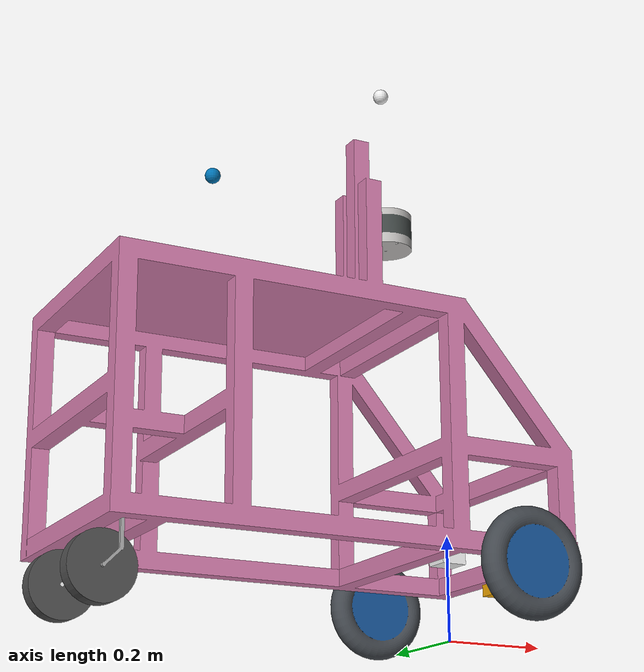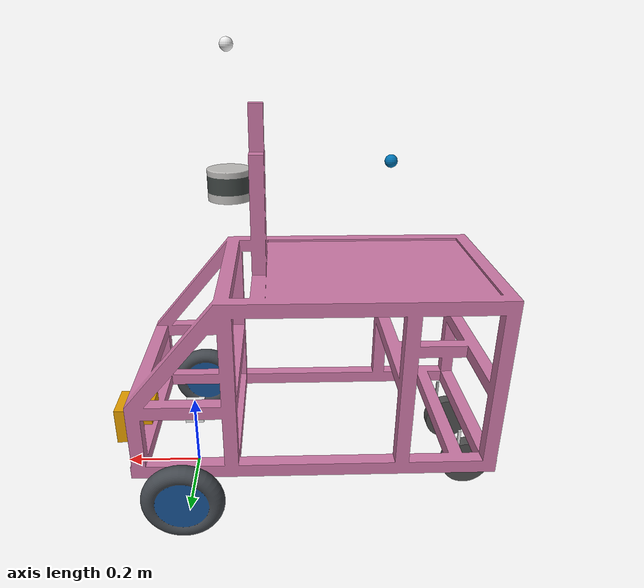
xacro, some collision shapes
<?xml version="1.0"?>
<!-- Revolute-Revolute Manipulator -->
<robot name="orange" xmlns:xacro="http://www.ros.org/wiki/xacro">

  <!-- Constants for robot dimensions -->
  <xacro:property name="PI" value="3.1415926535897931"/>

  <!-- Macro -->
  <xacro:macro name="box_inertia" params="m x y z">
    <inertia ixx="${m*(y*y+z*z)/12.0}" ixy = "0.0" ixz = "0.0"
             iyy="${m*(z*z+x*x)/12.0}" iyz = "0.0"
             izz="${m*(x*x+y*y)/12.0}" />
  </xacro:macro>
  <xacro:macro name="cylinder_inertia" params="m r h">
    <inertia ixx="${m*(3*r*r+h*h)/12.0}" ixy = "0.0" ixz = "0.0"
             iyy="${m*(3*r*r+h*h)/12.0}" iyz = "0.0"
             izz="${m*r*r/2.0}" />
  </xacro:macro>

  <!-- Import gazebo reference -->
  <xacro:include filename="$(find igvc2023)/urdf/orange.gazebo"/>

  <!-- Import 2D LiDAR model -->
  <xacro:include filename="$(find igvc2023)/urdf/sensors/hokuyo.urdf.xacro"/>
  <xacro:sensor_hokuyo name="hokuyo" parent="base_link" min_angle="-1.22" max_angle="1.22" samples="720">
    <origin xyz="0.16 0.0 0.05" rpy="0.0 0.0 0.0"/>
  </xacro:sensor_hokuyo>

  <!-- Import 3D LiDAR model -->
  <xacro:include filename="$(find igvc2023)/urdf/sensors/velodyne.urdf.xacro"/>
  <xacro:sensor_velodyne name="velodyne" parent="base_link" min_angle="-2.35619" max_angle="2.35619" samples="720">
    <origin xyz="-0.13 0.0 0.70" rpy="0.0 0.0 0.0"/>
  </xacro:sensor_velodyne>

  <!-- Import imu model -->
  <xacro:include filename="$(find igvc2023)/urdf/sensors/imu.urdf.xacro"/>
  <xacro:sensor_imu name="imu" parent="base_link" size="0.05 0.05 0.05">
    <origin xyz="0 0.0 0.068" rpy="0.0 0.0 0.0"/>
  </xacro:sensor_imu>

  <!-- Import fisheye camera model -->
  <xacro:include filename="$(find igvc2023)/urdf/sensors/camera.urdf.xacro"/>
  <xacro:sensor_camera name="camera" parent="base_link">
    <origin xyz="-0.13 0 1" rpy="0 0 0"/>
  </xacro:sensor_camera>

  <!-- Import gps model -->
  <xacro:include filename="$(find igvc2023)/urdf/sensors/gps.urdf.xacro"/>
  <xacro:sensor_gps name="gps" parent="base_link">
    <origin xyz="0.5 0 0.75" rpy="0 ${PI} 0"/>
  </xacro:sensor_gps>

  <!-- Base Footprint -->
  <joint name="base_joint" type="fixed">
    <parent link="base_footprint"/>
    <child link="base_link"/>
    <origin xyz="0.0 0.0 0.1015" rpy="0 0 0"/>
  </joint>

  <link name="base_footprint"/>

  <!-- Base Link -->
  <link name="base_link">
    <collision>
      <origin xyz="-0.33 0.0 0.25" rpy="0.0 0.0 0.0"/>
      <geometry>
        <box size="0.9 0.5 0.5"/>
      </geometry>
    </collision>

    <visual>
      <origin xyz="-0.355 0.0 0.3" rpy="0.0 0.0 0.0"/>
      <geometry>
        <mesh filename="package://igvc2023/meshes/IGVCchassis.dae"/>
      </geometry>
    </visual>

    <inertial>
       <mass value="40" />
       <origin xyz="-0.33 0.0 0.26" rpy="0.0 0.0 0.0"/>
       <xacro:box_inertia m="40" x="0.9" y="0.5" z="0.45"/>
    </inertial>
  </link>

  <!-- Back wheels -->
  <joint name="left_caster_hinge" type ="fixed">
    <origin xyz="0.0 0.0 0.0" rpy="0.0 0.0 0.0"/>
    <child link="left_caster_link"/>
    <parent link="base_link"/>
  </joint>

  <joint name="right_caster_hinge" type ="fixed">
    <origin xyz="0.0 0.0 0.0" rpy="0.0 0.0 0.0"/>
    <child link="right_caster_link"/>
    <parent link="base_link"/>
  </joint>

  <link name="left_caster_link">
    <collision>
      <origin xyz="-0.735 0.10 -0.039" rpy="0.0 ${PI/2} ${PI/2}"/>
      <geometry>
        <sphere radius="0.0625"/>
      </geometry>
    </collision>

    <visual>
      <origin xyz="-0.735 0.10 -0.039" rpy="0.0 0.0 0.0"/>
      <geometry>
        <mesh filename="package://igvc2023/meshes/left_back_wheel.dae"/>
      </geometry>
    </visual>
  </link>

  <link name="right_caster_link">
    <collision>
      <origin xyz="-0.735 -0.10 -0.039" rpy="0.0 ${PI/2} ${PI/2}"/>
      <geometry>
        <sphere radius="0.0625"/>
      </geometry>
    </collision>

    <visual>
      <origin xyz="-0.735 -0.10 -0.039" rpy="0.0 0.0 0.0"/>
      <geometry>
        <mesh filename="package://igvc2023/meshes/right_back_wheel.dae"/>
        <sphere radius="0.0625"/>
      </geometry>
    </visual>
  </link>

  <!-- Front wheels -->
  <joint type="revolute" name="left_wheel_hinge">
    <origin xyz="0.0 0.28 0.0" rpy="0.0 0.0 0.0"/>
    <child link="left_wheel">left_wheel</child>
    <parent link="base_link">base_link</parent>
    <axis xyz="0 1 0"/>
    <limit effort="100" velocity="100.0"  lower="-5000" upper="5000" />
  </joint>

  <joint type="revolute" name="right_wheel_hinge">
    <origin xyz="0.0 -0.28 0.0" rpy="0.0 0.0 0.0"/>
    <child link="right_wheel">right_wheel</child>
    <parent link="base_link">base_link</parent>
    <axis xyz="0 1 0"/>
    <limit effort="100" velocity="100.0"  lower="-5000" upper="5000" />
  </joint>

  <link name="left_wheel">
    <collision name="collision">
      <origin xyz="0.0 0.0 0.0" rpy="0.0 ${PI/2} ${PI/2}"/>
      <geometry>
        <cylinder length="0.047" radius="0.1015"/>
      </geometry>
    </collision>

    <visual name="visual">
      <origin xyz="0.0 0.0 0.0" rpy="0.0 0.0 0.0"/>
      <geometry>
        <mesh filename="package://igvc2023/meshes/front_wheel.dae"/>
      </geometry>
    </visual>

    <inertial>
       <mass value="3.4" />
       <origin xyz="0.0 0.0 0.0" rpy="0.0 ${PI/2} ${PI/2}"/>
       <xacro:cylinder_inertia m="3.4" r="0.1015" h="0.047"/>
    </inertial>
  </link>

  <link name="right_wheel">
    <collision name="collision">
      <origin xyz="0.0 0.0 0.0" rpy="0.0 ${PI/2} ${PI/2}"/>
      <geometry>
        <cylinder length="0.047" radius="0.1015"/>
      </geometry>
    </collision>

    <visual name="visual">
      <origin xyz="0.0 0.0 0.0" rpy="0.0 0.0 0.0"/>
      <geometry>
        <mesh filename="package://igvc2023/meshes/front_wheel.dae"/>
      </geometry>
    </visual>

    <inertial>
       <mass value="3.4" />
       <origin xyz="0.0 0.0 0.0" rpy="0.0 ${PI/2} ${PI/2}"/>
       <xacro:cylinder_inertia m="3.4" r="0.1015" h="0.047"/>
    </inertial>
  </link>
</robot>

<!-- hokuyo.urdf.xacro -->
<robot name="sensor_hokuyo" xmlns:xacro="http://ros.org/wiki/xacro"
                              xmlns:controller="http://playerstage.sourceforge.net/gazebo/xmlschema/#controller"
                              xmlns:interface="http://playerstage.sourceforge.net/gazebo/xmlschema/#interface">

  <xacro:property name="hokuyo_link" value="0.1" /> <!-- Size of square 'hokuyo' box -->
  <xacro:macro name="sensor_hokuyo" params="name parent *origin min_angle max_angle samples">
    <joint name="${name}_joint" type="fixed">
    	<xacro:insert_block name="origin"/>
      <axis xyz="0 1 0"/>
      <parent link="${parent}"/>
      <child link="${name}_link"/>
    </joint>

    <link name="${name}_link">
      <collision>
        <origin xyz="0 0 0" rpy="0 0 0"/>
        <geometry>
            <box size="${hokuyo_link} ${hokuyo_link} ${hokuyo_link}"/>
        </geometry>
      </collision>

      <visual>
        <origin xyz="0 0 0" rpy="0 0 0"/>
        <geometry>
          <mesh filename="package://igvc2023/meshes/hokuyo.dae"/>
        </geometry>
      </visual>

      <inertial>
        <mass value="0.0001"/>
        <origin xyz="0 0 0" rpy="0 0 0"/>
        <inertia ixx="0.0001" ixy="0" ixz="0" iyy="0.0001" iyz="0" izz="0.0001"/>
      </inertial>
    </link>

    <gazebo reference="hokuyo_link">
    <sensor type="ray" name="head_hokuyo_sensor">
      <pose>0 0 0 0 0 0</pose>
      <visualize>false</visualize>
      <update_rate>40</update_rate>
      <ray>
        <scan>
          <horizontal>
            <resolution>1</resolution>
            <samples>${samples}</samples>
            <min_angle>${min_angle}</min_angle>
            <max_angle>${max_angle}</max_angle>
          </horizontal>
        </scan>
        <range>
          <min>0.10</min>
          <max>30.0</max>
          <resolution>0.01</resolution>
        </range>
        <noise>
          <type>gaussian</type>
          <mean>0.0</mean>
          <stddev>0.01</stddev>
        </noise>
      </ray>
      <plugin name="gazebo_ros_head_hokuyo_controller" filename="libgazebo_ros_laser.so">
        <topicName>/hokuyo_scan</topicName>
        <frameName>hokuyo_link</frameName>
      </plugin>
    </sensor>
  </gazebo>

  </xacro:macro>

</robot>

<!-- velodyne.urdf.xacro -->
<robot name="sensor_velodyne" xmlns:xacro="http://ros.org/wiki/xacro"
                              xmlns:controller="http://playerstage.sourceforge.net/gazebo/xmlschema/#controller"
                              xmlns:interface="http://playerstage.sourceforge.net/gazebo/xmlschema/#interface">

  <xacro:property name="velodyne_link" value="0.1" /> <!-- Size of square 'hokuyo' box -->
  <xacro:macro name="sensor_velodyne" params="name parent *origin min_angle max_angle samples">
    <joint name="${name}_joint" type="fixed">
      <xacro:insert_block name="origin"/>
      <axis xyz="0 1 0"/>
      <parent link="${parent}"/>
      <child link="${name}_link"/>
    </joint>

    <link name="${name}_link">
      <collision>
        <origin xyz="0 0 0" rpy="0 0 0"/>
        <geometry>
            <box size="0.1 0.1 0.1"/>
        </geometry>
      </collision>

      <visual>
        <origin xyz="0 0 0" rpy="0 0 0"/>
        <geometry>
          <mesh filename="package://igvc2023/meshes/velodyne.dae"/>
        </geometry>
      </visual>

      <inertial>
        <mass value="0.0001"/>
        <origin xyz="0 0 0" rpy="0 0 0"/>
        <inertia ixx="0.0001" ixy="0" ixz="0" iyy="0.0001" iyz="0" izz="0.0001"/>
      </inertial>
    </link>

    <gazebo reference="velodyne_link">
      <sensor type="ray" name="head_velodyne_sensor">
        <pose>0 0 0 0 0 0</pose>
        <visualize>false</visualize>
        <update_rate>10</update_rate>
        <ray>
          <scan>
            <horizontal>
              <resolution>1</resolution>
              <samples>1875</samples>
              <min_angle>${-PI}</min_angle>
              <max_angle>${PI}</max_angle>
            </horizontal>
            <vertical>
              <resolution>1</resolution>
              <samples>16</samples>
              <min_angle>${-PI/12}</min_angle>
              <max_angle>${PI/12}</max_angle>
            </vertical>
          </scan>
          <range>
            <min>0.9</min>
            <max>100</max>
            <resolution>0.001</resolution>
          </range>
        </ray>

        <plugin name="gazebo_ros_laser_controller" filename="libgazebo_ros_velodyne_laser.so">
          <topicName>velodyne_points</topicName>
          <frameName>velodyne_link</frameName>
          <min_range>0.9</min_range>
          <max_range>100</max_range>
          <gaussianNoise>0.01</gaussianNoise>
        </plugin>
      </sensor>
    </gazebo>

  </xacro:macro>

</robot>

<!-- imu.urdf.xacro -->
<robot name="sensor_imu" xmlns:xacro="http://ros.org/wiki/xacro"
                         xmlns:controller="http://playerstage.sourceforge.net/gazebo/xmlschema/#controller"
                         xmlns:interface="http://playerstage.sourceforge.net/gazebo/xmlschema/#interface">

  <xacro:macro name="sensor_imu" params="name parent *origin size">
    <joint name="${name}_joint" type="fixed">
        <xacro:insert_block name="origin"/>
        <axis xyz="1 0 0"/>
        <parent link="${parent}"/>
        <child link="${name}_link"/>
    </joint>

    <link name="${name}_link">
        <inertial>
          <mass value="0.001"/>
          <origin rpy="0 0 0" xyz="0 0 0"/>
          <inertia ixx="0.0001" ixy="0" ixz="0" iyy="0.000001" iyz="0" izz="0.0001"/>
        </inertial>
        <visual>
          <origin rpy="0 0 0" xyz="0 0 0"/>
          <geometry>
            <box size="${size}"/>
          </geometry>
        </visual>
        <collision>
          <origin rpy="0 0 0" xyz="0 0 0"/>
          <geometry>
            <box size="${size}"/>
          </geometry>
        </collision>
    </link>

    <gazebo reference="${name}_link">
      <sensor type="imu" name="imu">
        <always_on>true</always_on>
        <topic>imu</topic>
        <plugin name="imu_plugin" filename="libgazebo_ros_imu_sensor.so">
          <bodyName>${name}_link</bodyName> <!-- bodyName always set base_link by URDF parser -->
          <frameName>${name}_link</frameName>
          <topicName>imu</topicName>
          <updateRateHZ>10.0</updateRateHZ>
          <gaussianNoise>0.001</gaussianNoise>
          <xyzOffset>0 0 0</xyzOffset>
          <rpyOffset>0 0 0</rpyOffset>
        </plugin>
      </sensor>
      <material>Gazebo/White</material>
    </gazebo>
  </xacro:macro>

</robot>

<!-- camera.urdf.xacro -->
<robot xmlns:xacro="http://ros.org/wiki/xacro" xmlns:controller="http://playerstage.sourceforge.net/gazebo/xmlschema/#controller" xmlns:interface="http://playerstage.sourceforge.net/gazebo/xmlschema/#interface" name="sensor_camera">
  <xacro:property name="camera" value="0.1"/>
  <xacro:macro name="sensor_camera" params="name parent *origin">
    <joint name="${name}_joint" type="fixed">
      <xacro:insert_block name="origin"/>
      <axis xyz="0 1 0"/>
      <parent link="${parent}"/>
      <child link="${name}_link"/>
    </joint>
    <link name="${name}_link">
      <visual>
        <origin xyz="0 0 0" rpy="0 0 0"/>
        <geometry>
          <sphere radius="0.015"/>
        </geometry>
      </visual>
      <collision>
        <origin xyz="0 0 0" rpy="0 0 0"/>
        <geometry>
          <sphere radius="0.015"/>
        </geometry>
      </collision>
    </link>
    <gazebo reference="${name}_link">
      <sensor type="wideanglecamera" name="cv_camera">
        <update_rate>10.0</update_rate>
        <camera>
          <pose>0 0 0 0 ${PI/2} 0</pose>
          <horizontal_fov>3.1415</horizontal_fov>
          <image>
            <format>R8G8B8</format>
            <width>800</width>
            <height>800</height>
          </image>
          <clip>
            <near>0.01</near>
            <far>100</far>
          </clip>
          <lens>
            <type>stereographic</type>
            <scale_to_hfov>1</scale_to_hfov>
            <cutoff_angle>1.5707</cutoff_angle>
            <env_texture_size>512</env_texture_size>
          </lens>
        </camera>
        <plugin name="camera_controller" filename="libgazebo_ros_camera.so">
          <alwaysOn>true</alwaysOn>
          <updateRate>0.0</updateRate>
          <cameraName>cv_camera</cameraName>
          <imageTopicName>image_raw</imageTopicName>
          <cameraInfoTopicName>camera_info</cameraInfoTopicName>
          <frameName>camera_link</frameName>
          <hackBaseline>0.0</hackBaseline>
          <distortionK1>0.0</distortionK1>
          <distortionK2>0.0</distortionK2>
          <distortionK3>0.0</distortionK3>
          <distortionT1>0.0</distortionT1>
          <distortionT2>0.0</distortionT2>
        </plugin>
      </sensor>
      <material>Gazebo/White</material>
    </gazebo>
  </xacro:macro>
</robot>

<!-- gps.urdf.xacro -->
<robot xmlns:xacro="http://ros.org/wiki/xacro" xmlns:controller="http://playerstage.sourceforge.net/gazebo/xmlschema/#controller" xmlns:interface="http://playerstage.sourceforge.net/gazebo/xmlschema/#interface" name="sensor_gps">
  <xacro:macro name="sensor_gps" params="name parent *origin">
    <joint name="${name}_joint" type="fixed">
      <xacro:insert_block name="origin"/>
      <axis xyz="1 0 0"/>
      <parent link="${parent}"/>
      <child link="${name}_link"/>
    </joint>
    <link name="${name}_link">
      <visual>
        <origin xyz="1 0 0" rpy="0 0 0"/>
        <geometry>
          <sphere radius="0.015"/>
        </geometry>
      </visual>
      <collision>
        <origin xyz="1 0 0" rpy="0 0 0"/>
        <geometry>
          <sphere radius="0.015"/>
        </geometry>
      </collision>
    </link>
    <gazebo>
      <plugin name="gps" filename="libhector_gazebo_ros_gps.so">
        <updateRate>1.0</updateRate>
        <topicName>/fix</topicName>
        <gaussianNoise>0.05 0.05 0.05</gaussianNoise>
        <offset>0 0 0</offset>
        <velocityGaussianNoise>0 0 0</velocityGaussianNoise>
        <frameId>gps_link</frameId>
      </plugin>
      <material>Gazebo/White</material>
    </gazebo>
  </xacro:macro>
</robot>
